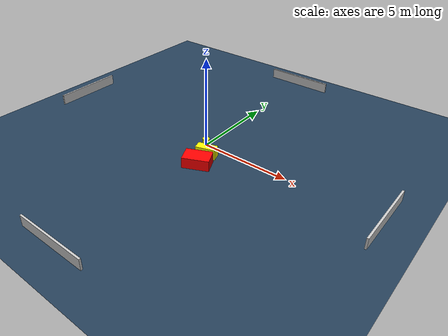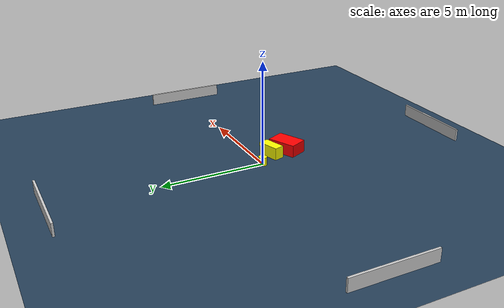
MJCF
<?xml version="1.0" ?>
<mujoco model="generated_environment">
  <option timestep="0.01" integrator="RK4" cone="elliptic"/>
  <default>
    <geom density="1"/>
  </default>
  <asset>
    <texture builtin="gradient" height="3072" name="skybox" rgb1="0.3 0.5 0.7" rgb2="0 0 0" type="skybox" width="512"/>
    <texture builtin="checker" height="300" name="groundplane" rgb1="0.2 0.3 0.4" rgb2="0.1 0.2 0.3" type="2d" width="300"/>
    <material name="groundplane" reflectance="0.2" texrepeat="5 5" texture="groundplane"/>
  </asset>
  <worldbody>
    <light dir="0 0 -1" directional="true" pos="0 0 1.5"/>
    <geom condim="3" friction="0.5 0.005 0.001" material="groundplane" name="floor" pos="0 0 0" size="0 0 0.05" type="plane"/>
    <body name="walls">
      <geom name="wall_1" condim="4" pos="-10.0 0.0 0.3" rgba="0.800000011920929 0.800000011920929 0.800000011920929 1.0" size="0.05 2.0 0.3" type="box"/>
      <geom name="wall_2" condim="4" pos="10.0 0.0 0.3" rgba="0.800000011920929 0.800000011920929 0.800000011920929 1.0" size="0.05 2.0 0.3" type="box"/>
      <geom name="wall_3" condim="4" pos="0.0 -10.0 0.3" rgba="0.800000011920929 0.800000011920929 0.800000011920929 1.0" size="2.0 0.05 0.3" type="box"/>
      <geom name="wall_4" condim="4" pos="0.0 10.0 0.3" rgba="0.800000011920929 0.800000011920929 0.800000011920929 1.0" size="2.0 0.05 0.3" type="box"/>
    </body>
    <body name="robot">
      <joint name="joint_x" type="slide" pos="0 0 0" axis="1 0 0"/>
      <joint name="joint_y" type="slide" pos="0 0 0" axis="0 1 0"/>
      <geom name="robot" type="cylinder" pos="0.0 0.0 0.2" size="0.2 0.2 0.0" mass="5.0" friction="1.0 0.005 0.0001" condim="4" rgba="1.0 1.0 0.0 1.0"/>
    </body>
    <body name="obstacle_1_movable">
      <geom name="obstacle_1_movable" condim="4" pos="0.7123467000557296 -0.8334082617444614 0.3" euler="0 0 196.96346946525486" friction="0.0 0.005 0.001" rgba="1.0 1.0 0.0 1.0" size="0.5426734854779833 0.24726751733533384 0.3" type="box" mass="0.1"/>
      <joint type="free"/>
    </body>
    <body name="obstacle_2_static">
      <geom name="obstacle_2_static" condim="4" pos="0.8600236754214008 -1.7580935481404754 0.3" euler="0 0 114.75370757125032" friction="0.0 0.005 0.001" rgba="1.0 0.0 0.0 1.0" size="0.46525762576422575 0.720169401644962 0.3" type="box"/>
    </body>
  </worldbody>
  <actuator>
    <motor name="actuator_x" joint="joint_x" gear="1" ctrlrange="-1 1"/>
    <motor name="actuator_y" joint="joint_y" gear="1" ctrlrange="-1 1"/>
  </actuator>
</mujoco>
